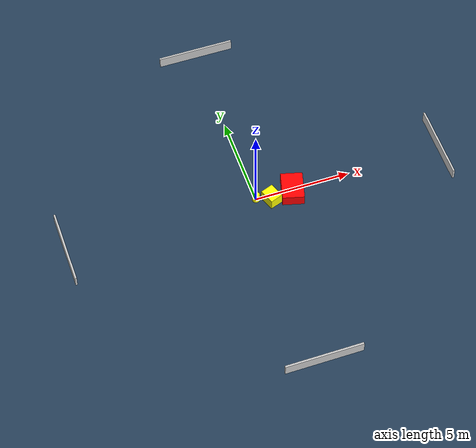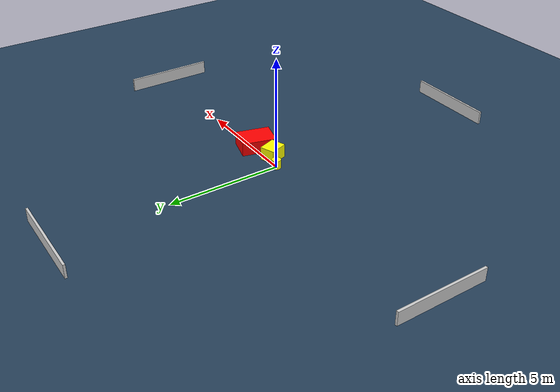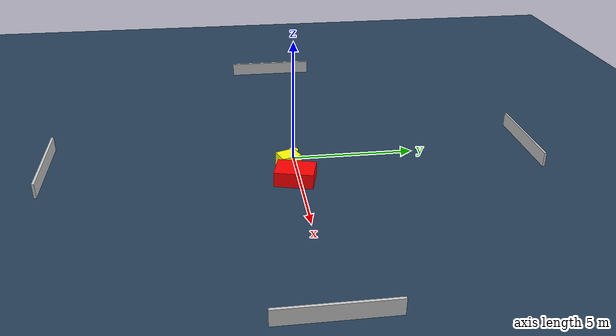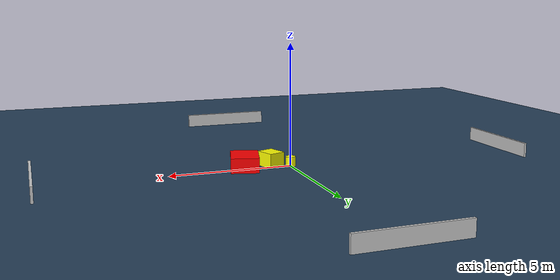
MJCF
<?xml version="1.0" ?>
<mujoco model="generated_environment">
  <option timestep="0.01" integrator="RK4" cone="elliptic"/>
  <default>
    <geom density="1"/>
  </default>
  <asset>
    <texture builtin="gradient" height="3072" name="skybox" rgb1="0.3 0.5 0.7" rgb2="0 0 0" type="skybox" width="512"/>
    <texture builtin="checker" height="300" name="groundplane" rgb1="0.2 0.3 0.4" rgb2="0.1 0.2 0.3" type="2d" width="300"/>
    <material name="groundplane" reflectance="0.2" texrepeat="5 5" texture="groundplane"/>
  </asset>
  <worldbody>
    <light dir="0 0 -1" directional="true" pos="0 0 1.5"/>
    <geom condim="3" friction="0.5 0.005 0.001" material="groundplane" name="floor" pos="0 0 0" size="0 0 0.05" type="plane"/>
    <body name="walls">
      <geom name="wall_1" condim="4" pos="-10.0 0.0 0.3" rgba="0.800000011920929 0.800000011920929 0.800000011920929 1.0" size="0.05 2.0 0.3" type="box"/>
      <geom name="wall_2" condim="4" pos="10.0 0.0 0.3" rgba="0.800000011920929 0.800000011920929 0.800000011920929 1.0" size="0.05 2.0 0.3" type="box"/>
      <geom name="wall_3" condim="4" pos="0.0 -10.0 0.3" rgba="0.800000011920929 0.800000011920929 0.800000011920929 1.0" size="2.0 0.05 0.3" type="box"/>
      <geom name="wall_4" condim="4" pos="0.0 10.0 0.3" rgba="0.800000011920929 0.800000011920929 0.800000011920929 1.0" size="2.0 0.05 0.3" type="box"/>
    </body>
    <body name="robot">
      <joint name="joint_x" type="slide" pos="0 0 0" axis="1 0 0"/>
      <joint name="joint_y" type="slide" pos="0 0 0" axis="0 1 0"/>
      <geom name="robot" type="cylinder" pos="0.0 0.0 0.2" size="0.2 0.2 0.0" mass="5.0" friction="1.0 0.005 0.0001" condim="4" rgba="1.0 1.0 0.0 1.0"/>
    </body>
    <body name="obstacle_1_movable">
      <geom name="obstacle_1_movable" condim="4" pos="0.7385651480633384 -0.2995482672807833 0.3" euler="0 0 199.83645963207354" friction="0.0 0.005 0.001" rgba="1.0 1.0 0.0 1.0" size="0.34307505594474597 0.41064098685352446 0.3" type="box" mass="0.1"/>
      <joint type="free"/>
    </body>
    <body name="obstacle_2_static">
      <geom name="obstacle_2_static" condim="4" pos="1.901693422302791 -0.16695044186804658 0.3" euler="0 0 164.9176092854325" friction="0.0 0.005 0.001" rgba="1.0 0.0 0.0 1.0" size="0.5628196345478967 0.7649211000527403 0.3" type="box"/>
    </body>
  </worldbody>
  <actuator>
    <motor name="actuator_x" joint="joint_x" gear="1" ctrlrange="-1 1"/>
    <motor name="actuator_y" joint="joint_y" gear="1" ctrlrange="-1 1"/>
  </actuator>
</mujoco>
